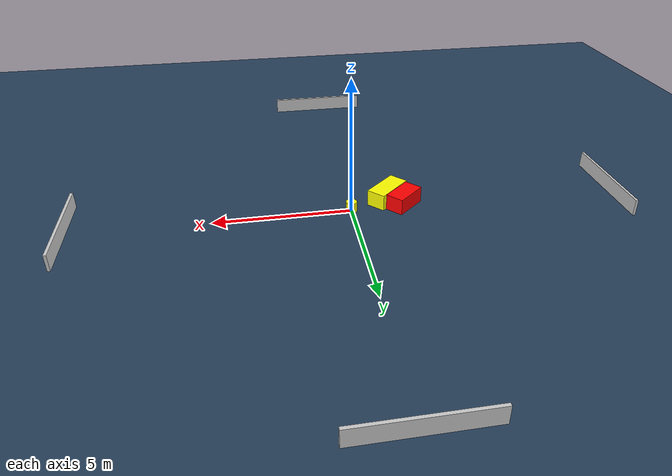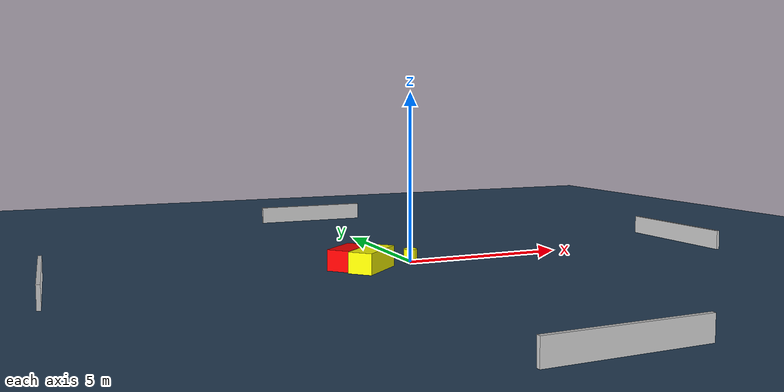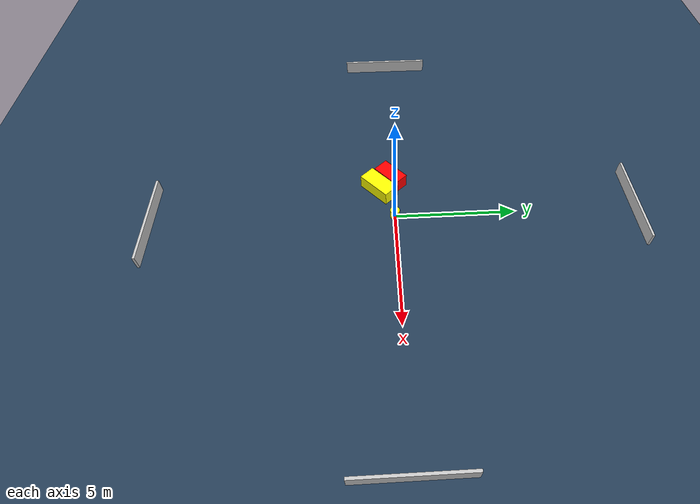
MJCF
<?xml version="1.0" ?>
<mujoco model="generated_environment">
  <option timestep="0.01" integrator="RK4" cone="elliptic"/>
  <default>
    <geom density="1"/>
  </default>
  <asset>
    <texture builtin="gradient" height="3072" name="skybox" rgb1="0.3 0.5 0.7" rgb2="0 0 0" type="skybox" width="512"/>
    <texture builtin="checker" height="300" name="groundplane" rgb1="0.2 0.3 0.4" rgb2="0.1 0.2 0.3" type="2d" width="300"/>
    <material name="groundplane" reflectance="0.2" texrepeat="5 5" texture="groundplane"/>
  </asset>
  <worldbody>
    <light dir="0 0 -1" directional="true" pos="0 0 1.5"/>
    <geom condim="3" friction="0.5 0.005 0.001" material="groundplane" name="floor" pos="0 0 0" size="0 0 0.05" type="plane"/>
    <body name="walls">
      <geom name="wall_1" condim="4" pos="-10.0 0.0 0.3" rgba="0.800000011920929 0.800000011920929 0.800000011920929 1.0" size="0.05 2.0 0.3" type="box"/>
      <geom name="wall_2" condim="4" pos="10.0 0.0 0.3" rgba="0.800000011920929 0.800000011920929 0.800000011920929 1.0" size="0.05 2.0 0.3" type="box"/>
      <geom name="wall_3" condim="4" pos="0.0 -10.0 0.3" rgba="0.800000011920929 0.800000011920929 0.800000011920929 1.0" size="2.0 0.05 0.3" type="box"/>
      <geom name="wall_4" condim="4" pos="0.0 10.0 0.3" rgba="0.800000011920929 0.800000011920929 0.800000011920929 1.0" size="2.0 0.05 0.3" type="box"/>
    </body>
    <body name="robot">
      <joint name="joint_x" type="slide" pos="0 0 0" axis="1 0 0"/>
      <joint name="joint_y" type="slide" pos="0 0 0" axis="0 1 0"/>
      <geom name="robot" type="cylinder" pos="0.0 0.0 0.2" size="0.2 0.2 0.0" mass="5.0" friction="1.0 0.005 0.0001" condim="4" rgba="1.0 1.0 0.0 1.0"/>
    </body>
    <body name="obstacle_1_movable">
      <geom name="obstacle_1_movable" condim="4" pos="-1.4621306622510295 -0.602151096300548 0.3" euler="0 0 133.23335651052986" friction="0.0 0.005 0.001" rgba="1.0 1.0 0.0 1.0" size="0.3571682198708943 0.7520768912038664 0.3" type="box" mass="0.1"/>
      <joint type="free"/>
    </body>
    <body name="obstacle_2_static">
      <geom name="obstacle_2_static" condim="4" pos="-1.9734475008618355 -0.09315113381521208 0.3" euler="0 0 42.30940206555732" friction="0.0 0.005 0.001" rgba="1.0 0.0 0.0 1.0" size="0.6274534719804472 0.342291350315977 0.3" type="box"/>
    </body>
  </worldbody>
  <actuator>
    <motor name="actuator_x" joint="joint_x" gear="1" ctrlrange="-1 1"/>
    <motor name="actuator_y" joint="joint_y" gear="1" ctrlrange="-1 1"/>
  </actuator>
</mujoco>
